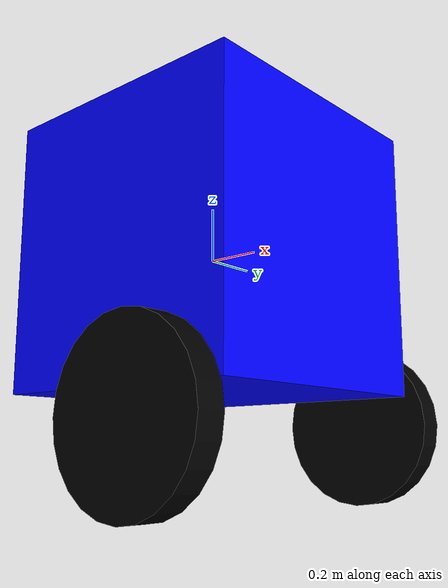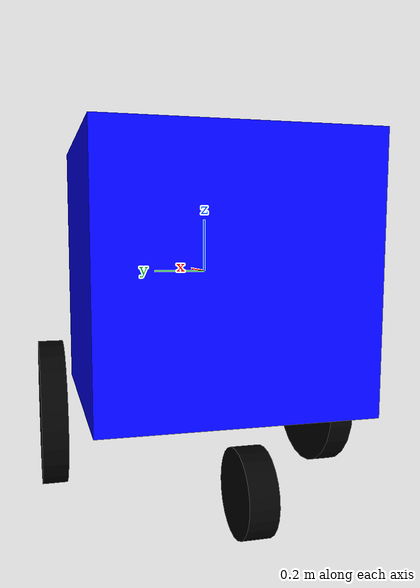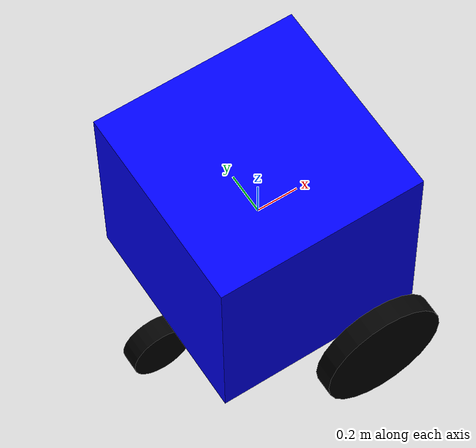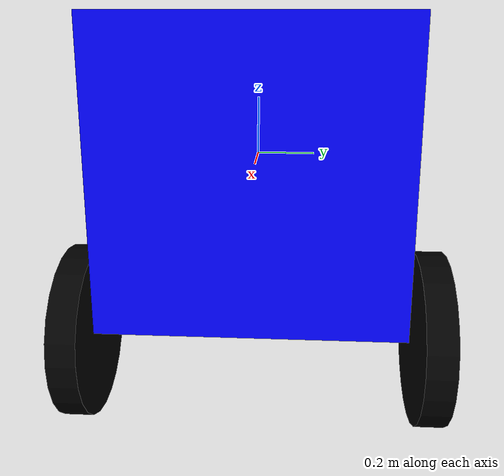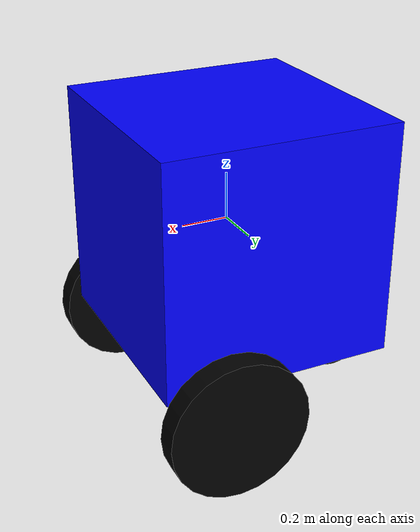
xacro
<?xml version="1.0"?>
<robot xmlns:xacro="http://www.ros.org/wiki/xacro" name="mobile_robot">

    <xacro:include filename="$(find custom_diff_drive)/urdf/ros2_control.xacro" />

    <material name="blue">
        <color rgba="0 0 1 1"/>
    </material>

    <material name="black">
        <color rgba="0 0 0 1"/>
    </material>

    <link name="base_link">
        <visual>
            <origin xyz="0 0 0" rpy="0 0 0"/>
            <geometry>
                <box size="1 1 1"/>
            </geometry>
            <material name="blue"/>
        </visual>
        <collision>
            <origin xyz="0 0 0" rpy="0 0 0"/>
            <geometry>
                <box size="1.1 1.1 1.1"/>
            </geometry>
        </collision>
        <inertial>
            <origin xyz="0 0 0" rpy="0 0 0"/>
            <mass value="1"/>
            <inertia ixx="0.001" ixy="0" ixz="0" iyy="0.001" iyz="0" izz="0.001"/>
        </inertial>
    </link>

    <link name="base_footprint"/>

    <joint name="base_footprint_joint" type="fixed">
        <parent link="base_link"/>
        <child link="base_footprint"/>
        <origin xyz="0 0 0" rpy="0 0 0"/>
    </joint>

    <link name="lidar_link">
        <visual>
            <origin xyz="0 0 0" rpy="0 0 0"/>
            <geometry>
                <cylinder radius="0.1" length="0.1"/>
            </geometry>
            <material name="black"/>
        </visual>
        <collision>
            <origin xyz="0 0 0" rpy="0 0 0"/>
            <geometry>
                <cylinder radius="0.1" length="0.1"/>
            </geometry>
        </collision>
        <inertial>
            <origin xyz="0 0 0" rpy="0 0 0"/>
            <mass value="0.1"/>
            <inertia ixx="0.001" ixy="0" ixz="0" iyy="0.001" iyz="0" izz="0.001"/>
        </inertial>
    </link>

    <joint name="lidar_joint" type="fixed">
        <parent link="base_link"/>
        <child link="lidar_link"/>
        <origin xyz="0 0 0" rpy="0 0 0"/>
    </joint>

    <joint name="joint_1" type="continuous">
        <origin xyz="0.25 0.6 -0.6" rpy="0 0 0"/>
        <parent link="base_link"/>
        <child link="wheel_left"/>
        <axis xyz="0 1 0"/>
    </joint>

    <link name="wheel_left">
        <visual>
            <origin xyz="0 0 0" rpy="1.5707 0 0"/>
            <geometry>
                <cylinder radius="0.3" length="0.1"/>
            </geometry>
            <material name="black"/>
        </visual>
        <collision>
            <origin xyz="0 0 0" rpy="1.5707 0 0"/>
            <geometry>
                <cylinder radius="0.3" length="0.1"/>
            </geometry>
        </collision>
        <inertial>
            <origin xyz="0 0 0" rpy="1.5707 0 0"/>
            <mass value="1"/>
            <inertia ixx="0.001" ixy="0" ixz="0" iyy="0.001" iyz="0" izz="0.001"/>
        </inertial>
    </link>

    <joint name="joint_2" type="continuous">
        <origin xyz="0.25 -0.6 -0.6" rpy="0 0 0"/>
        <parent link="base_link"/>
        <child link="wheel_right"/>
        <axis xyz="0 1 0"/>
    </joint>

    <link name="wheel_right">
        <visual>
            <origin xyz="0 0 0" rpy="1.5707 0 0"/>
            <geometry>
                <cylinder radius="0.3" length="0.1"/>
            </geometry>
            <material name="black"/>
        </visual>
        <collision>
            <origin xyz="0 0 0" rpy="1.5707 0 0"/>
            <geometry>
                <cylinder radius="0.3" length="0.1"/>
            </geometry>
        </collision>
        <inertial>
            <origin xyz="0 0 0" rpy="1.5707 0 0"/>
            <mass value="1"/>
            <inertia ixx="0.001" ixy="0" ixz="0" iyy="0.001" iyz="0" izz="0.001"/>
        </inertial>
    </link>

    <joint name="joint_3" type="continuous">
        <origin xyz="-0.55 0 -0.7" rpy="0 0 0"/>
        <parent link="base_link"/>
        <child link="wheel_front"/>
        <axis xyz="0 0 1"/>
    </joint>

    <link name="wheel_front">
        <visual>
            <origin xyz="0 0 0" rpy="1.5707 0 0"/>
            <geometry>
                <cylinder radius="0.15" length="0.1"/>
            </geometry>
            <material name="black"/>
        </visual>
        <collision>
            <origin xyz="0 0 0" rpy="1.5707 0 0"/>
            <geometry>
                <cylinder radius="0.15" length="0.1"/>
            </geometry>
        </collision>
        <inertial>
            <origin xyz="0 0 0" rpy="1.5707 0 0"/>
            <mass value="1"/>
            <inertia ixx="0.001" ixy="0" ixz="0" iyy="0.001" iyz="0" izz="0.001"/>
        </inertial>
    </link>

    <xacro:mobile_robot_ros2_control name="IgnitionSystem"/>

    <gazebo>
        <plugin filename="ignition-gazebo-diff-drive-system"
                name="ignition::gazebo::systems::DiffDrive">
            <left_joint>joint_1</left_joint>
            <right_joint>joint_2</right_joint>
            <wheel_separation>1.2</wheel_separation>
            <wheel_radius>0.3</wheel_radius>
            <odom_publish_frequency>50</odom_publish_frequency>
            <topic>/model/mobile_robot/cmd_vel</topic>
            <odom_topic>/model/mobile_robot/odometry</odom_topic>
            <tf_topic>/model/mobile_robot/tf</tf_topic>
            <frame_id>odom</frame_id>
            <child_frame_id>base_link</child_frame_id>
        </plugin>

        <plugin filename="ignition-gazebo-sensors-system"
                name="ignition::gazebo::systems::Sensors">
            <render_engine>ogre2</render_engine>
        </plugin>

        <plugin filename="ignition-gazebo-imu-system"
                name="ignition::gazebo::systems::Imu"/>
    </gazebo>

    <gazebo reference="lidar_link">
        <sensor name="gpu_lidar" type="gpu_lidar">
            <pose>0 0 0 0 0 0</pose>
            <topic>/lidar</topic>
            <update_rate>10</update_rate>
            <ray>
                <scan>
                    <horizontal>
                        <samples>360</samples>
                        <resolution>1</resolution>
                        <min_angle>-3.14159</min_angle>
                        <max_angle>3.14159</max_angle>
                    </horizontal>
                </scan>
                <range>
                    <min>0.3</min>
                    <max>12.0</max>
                    <resolution>0.01</resolution>
                </range>
            </ray>
            <always_on>1</always_on>
            <visualize>true</visualize>
        </sensor>
    </gazebo>

    <gazebo reference="base_link">
        <sensor name="imu_sensor" type="imu">
            <always_on>1</always_on>
            <update_rate>100</update_rate>
            <topic>/imu</topic>
        </sensor>
    </gazebo>

</robot>
